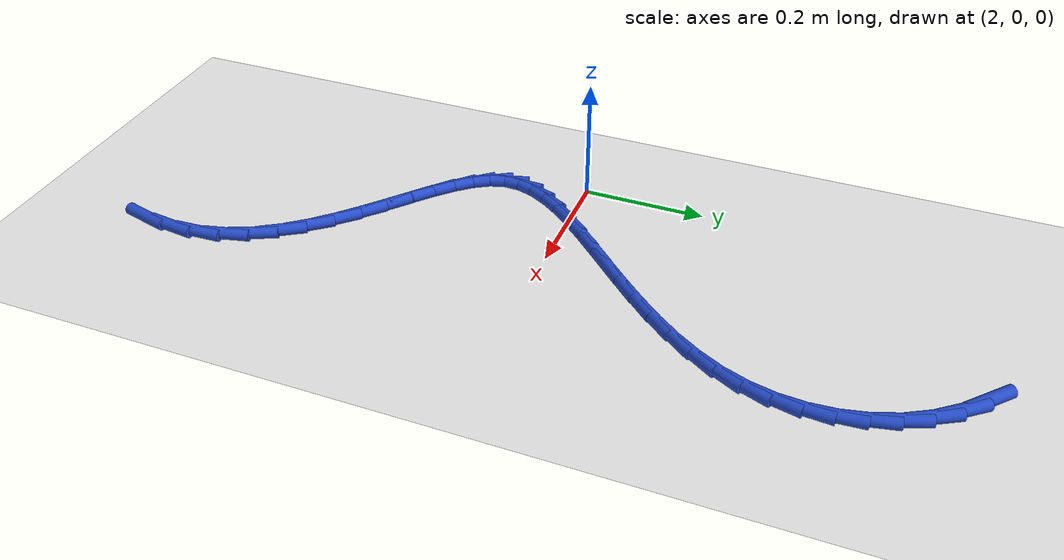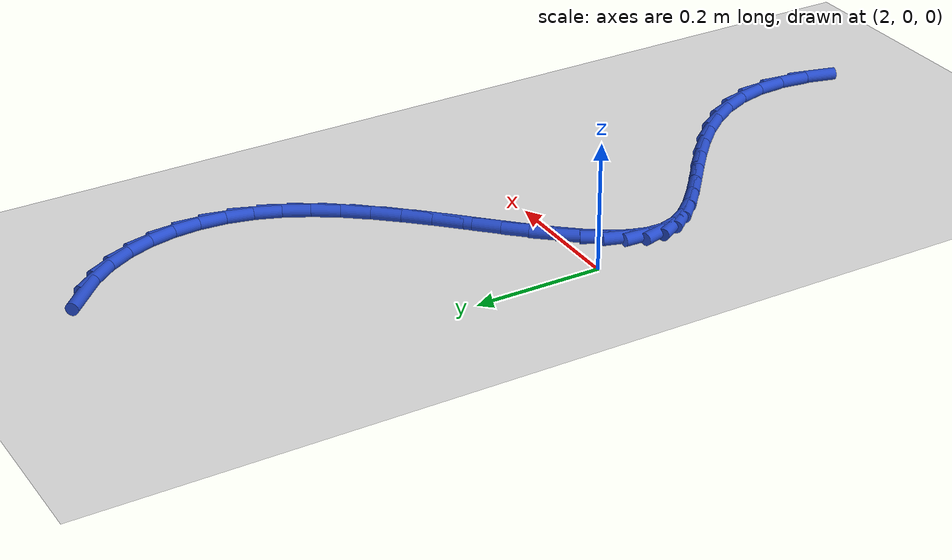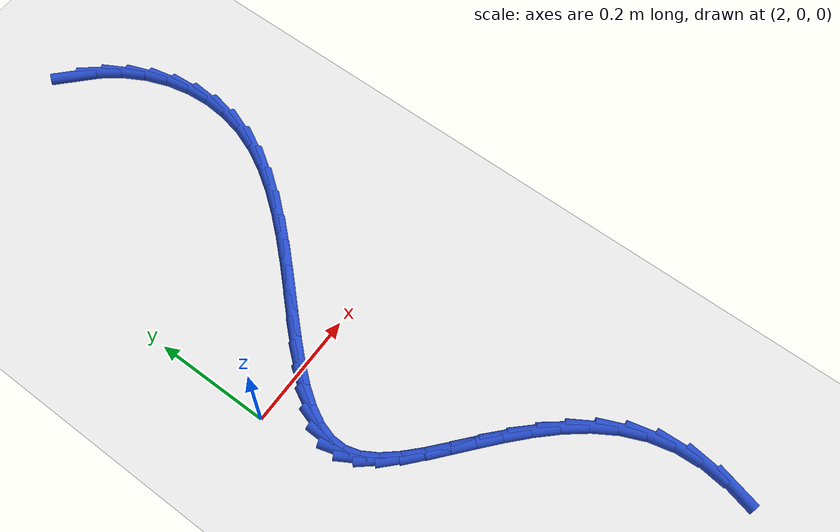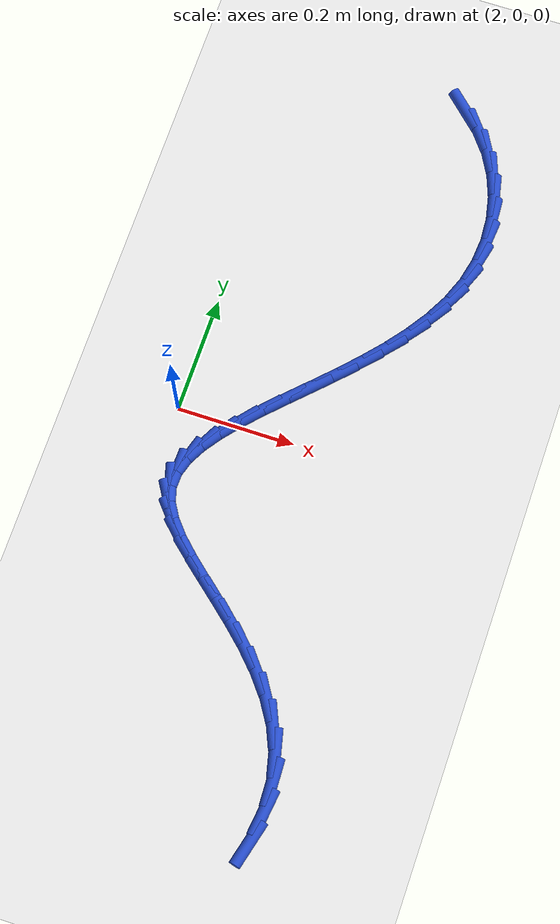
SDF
<sdf version="1.6">
 <world name="default">
  <model name="ground_plane">
   <static>1</static>
   <link name="link">
    <collision name="collision">
     <geometry><plane><normal>0 0 1</normal><size>100 100</size></plane></geometry>
     <surface><friction><ode><mu>100</mu><mu2>50</mu2></ode></friction></surface>
    </collision>
    <visual name="visual">
     <cast_shadows>0</cast_shadows>
     <geometry><plane><normal>0 0 1</normal><size>100 100</size></plane></geometry>
     <material>
      <script><uri>file://media/materials/scripts/gazebo.material</uri><name>Gazebo/WhiteGlow</name></script>
     </material>
    </visual>
   </link>
  </model>
  <model name="line">
   <link name="link_93">
    <pose>2.2870967362323027 0.6661822941839748 0.01 0 1.57 -0.758001790986611</pose>
    <collision name="collision">
     <geometry><cylinder><radius>0.01</radius><length>0.08</length></cylinder></geometry>
    </collision>
    <visual name="visual">
     <material>
      <script><name>Gazebo/Blue</name><uri>file://media/materials/scripts/gazebo.material</uri></script>
     </material>
     <geometry><cylinder><radius>0.01</radius><length>0.08</length></cylinder></geometry>
    </visual>
   </link>
   <link name="link_94">
    <pose>2.3196730505247185 0.6353437517136151 0.01 0 1.57 -0.9112644116837351</pose>
    <collision name="collision">
     <geometry><cylinder><radius>0.01</radius><length>0.08</length></cylinder></geometry>
    </collision>
    <visual name="visual">
     <material>
      <script><name>Gazebo/Blue</name><uri>file://media/materials/scripts/gazebo.material</uri></script>
     </material>
     <geometry><cylinder><radius>0.01</radius><length>0.08</length></cylinder></geometry>
    </visual>
   </link>
   <link name="link_95">
    <pose>2.3463635806340384 0.600920133127875 0.01 0 1.57 -1.0630850598658943</pose>
    <collision name="collision">
     <geometry><cylinder><radius>0.01</radius><length>0.08</length></cylinder></geometry>
    </collision>
    <visual name="visual">
     <material>
      <script><name>Gazebo/Blue</name><uri>file://media/materials/scripts/gazebo.material</uri></script>
     </material>
     <geometry><cylinder><radius>0.01</radius><length>0.08</length></cylinder></geometry>
    </visual>
   </link>
   <link name="link_96">
    <pose>2.367130562901029 0.5635934605785723 0.01 0 1.57 -1.2125737376812222</pose>
    <collision name="collision">
     <geometry><cylinder><radius>0.01</radius><length>0.08</length></cylinder></geometry>
    </collision>
    <visual name="visual">
     <material>
      <script><name>Gazebo/Blue</name><uri>file://media/materials/scripts/gazebo.material</uri></script>
     </material>
     <geometry><cylinder><radius>0.01</radius><length>0.08</length></cylinder></geometry>
    </visual>
   </link>
   <link name="link_97">
    <pose>2.3819362336664516 0.5240457562175261 0.01 0 1.57 -1.3596494786223026</pose>
    <collision name="collision">
     <geometry><cylinder><radius>0.01</radius><length>0.08</length></cylinder></geometry>
    </collision>
    <visual name="visual">
     <material>
      <script><name>Gazebo/Blue</name><uri>file://media/materials/scripts/gazebo.material</uri></script>
     </material>
     <geometry><cylinder><radius>0.01</radius><length>0.08</length></cylinder></geometry>
    </visual>
   </link>
   <link name="link_98">
    <pose>2.3907428292710713 0.4829590421965542 0.01 0 1.57 -1.5048569552525022</pose>
    <collision name="collision">
     <geometry><cylinder><radius>0.01</radius><length>0.08</length></cylinder></geometry>
    </collision>
    <visual name="visual">
     <material>
      <script><name>Gazebo/Blue</name><uri>file://media/materials/scripts/gazebo.material</uri></script>
     </material>
     <geometry><cylinder><radius>0.01</radius><length>0.08</length></cylinder></geometry>
    </visual>
   </link>
   <link name="link_99">
    <pose>2.3935125860556523 0.4410153406674748 0.01 0 1.57 1.492491658375106</pose>
    <collision name="collision">
     <geometry><cylinder><radius>0.01</radius><length>0.08</length></cylinder></geometry>
    </collision>
    <visual name="visual">
     <material>
      <script><name>Gazebo/Blue</name><uri>file://media/materials/scripts/gazebo.material</uri></script>
     </material>
     <geometry><cylinder><radius>0.01</radius><length>0.08</length></cylinder></geometry>
    </visual>
   </link>
   <link name="link_100">
    <pose>2.390207740360957 0.3988966737821071 0.01 0 1.57 1.3482333380971423</pose>
    <collision name="collision">
     <geometry><cylinder><radius>0.01</radius><length>0.08</length></cylinder></geometry>
    </collision>
    <visual name="visual">
     <material>
      <script><name>Gazebo/Blue</name><uri>file://media/materials/scripts/gazebo.material</uri></script>
     </material>
     <geometry><cylinder><radius>0.01</radius><length>0.08</length></cylinder></geometry>
    </visual>
   </link>
   <link name="link_101">
    <pose>2.3807905285277497 0.35728506369226826 0.01 0 1.57 1.2056622199859819</pose>
    <collision name="collision">
     <geometry><cylinder><radius>0.01</radius><length>0.08</length></cylinder></geometry>
    </collision>
    <visual name="visual">
     <material>
      <script><name>Gazebo/Blue</name><uri>file://media/materials/scripts/gazebo.material</uri></script>
     </material>
     <geometry><cylinder><radius>0.01</radius><length>0.08</length></cylinder></geometry>
    </visual>
   </link>
   <link name="link_102">
    <pose>2.3653135409478607 0.31679861542812693 0.01 0 1.57 1.082280414020679</pose>
    <collision name="collision">
     <geometry><cylinder><radius>0.01</radius><length>0.08</length></cylinder></geometry>
    </collision>
    <visual name="visual">
     <material>
      <script><name>Gazebo/Blue</name><uri>file://media/materials/scripts/gazebo.material</uri></script>
     </material>
     <geometry><cylinder><radius>0.01</radius><length>0.08</length></cylinder></geometry>
    </visual>
   </link>
   <link name="link_103">
    <pose>2.3444782296406212 0.2775964245223131 0.01 0 1.57 0.984577662617644</pose>
    <collision name="collision">
     <geometry><cylinder><radius>0.01</radius><length>0.08</length></cylinder></geometry>
    </collision>
    <visual name="visual">
     <material>
      <script><name>Gazebo/Blue</name><uri>file://media/materials/scripts/gazebo.material</uri></script>
     </material>
     <geometry><cylinder><radius>0.01</radius><length>0.08</length></cylinder></geometry>
    </visual>
   </link>
   <link name="link_104">
    <pose>2.3192696296708877 0.23963697777099482 0.01 0 1.57 0.9096635656161746</pose>
    <collision name="collision">
     <geometry><cylinder><radius>0.01</radius><length>0.08</length></cylinder></geometry>
    </collision>
    <visual name="visual">
     <material>
      <script><name>Gazebo/Blue</name><uri>file://media/materials/scripts/gazebo.material</uri></script>
     </material>
     <geometry><cylinder><radius>0.01</radius><length>0.08</length></cylinder></geometry>
    </visual>
   </link>
   <link name="link_105">
    <pose>2.2906739657571644 0.20287792040057567 0.01 0 1.57 0.8544278095283522</pose>
    <collision name="collision">
     <geometry><cylinder><radius>0.01</radius><length>0.08</length></cylinder></geometry>
    </collision>
    <visual name="visual">
     <material>
      <script><name>Gazebo/Blue</name><uri>file://media/materials/scripts/gazebo.material</uri></script>
     </material>
     <geometry><cylinder><radius>0.01</radius><length>0.08</length></cylinder></geometry>
    </visual>
   </link>
   <link name="link_106">
    <pose>2.259677462617961 0.16727689763746123 0.01 0 1.57 0.8163947352083136</pose>
    <collision name="collision">
     <geometry><cylinder><radius>0.01</radius><length>0.08</length></cylinder></geometry>
    </collision>
    <visual name="visual">
     <material>
      <script><name>Gazebo/Blue</name><uri>file://media/materials/scripts/gazebo.material</uri></script>
     </material>
     <geometry><cylinder><radius>0.01</radius><length>0.08</length></cylinder></geometry>
    </visual>
   </link>
   <link name="link_107">
    <pose>2.227266344971783 0.13279155470805545 0.01 0 1.57 0.7940394162882383</pose>
    <collision name="collision">
     <geometry><cylinder><radius>0.01</radius><length>0.08</length></cylinder></geometry>
    </collision>
    <visual name="visual">
     <material>
      <script><name>Gazebo/Blue</name><uri>file://media/materials/scripts/gazebo.material</uri></script>
     </material>
     <geometry><cylinder><radius>0.01</radius><length>0.08</length></cylinder></geometry>
    </visual>
   </link>
   <link name="link_108">
    <pose>2.1944268375371365 0.09937953683876269 0.01 0 1.57 0.7869349839920542</pose>
    <collision name="collision">
     <geometry><cylinder><radius>0.01</radius><length>0.08</length></cylinder></geometry>
    </collision>
    <visual name="visual">
     <material>
      <script><name>Gazebo/Blue</name><uri>file://media/materials/scripts/gazebo.material</uri></script>
     </material>
     <geometry><cylinder><radius>0.01</radius><length>0.08</length></cylinder></geometry>
    </visual>
   </link>
   <link name="link_109">
    <pose>2.162145165032531 0.06699848925598832 0.01 0 1.57 0.7959372668250022</pose>
    <collision name="collision">
     <geometry><cylinder><radius>0.01</radius><length>0.08</length></cylinder></geometry>
    </collision>
    <visual name="visual">
     <material>
      <script><name>Gazebo/Blue</name><uri>file://media/materials/scripts/gazebo.material</uri></script>
     </material>
     <geometry><cylinder><radius>0.01</radius><length>0.08</length></cylinder></geometry>
    </visual>
   </link>
   <link name="link_110">
    <pose>2.1314075521764706 0.035606057186136075 0.01 0 1.57 0.8235503020952906</pose>
    <collision name="collision">
     <geometry><cylinder><radius>0.01</radius><length>0.08</length></cylinder></geometry>
    </collision>
    <visual name="visual">
     <material>
      <script><name>Gazebo/Blue</name><uri>file://media/materials/scripts/gazebo.material</uri></script>
     </material>
     <geometry><cylinder><radius>0.01</radius><length>0.08</length></cylinder></geometry>
    </visual>
   </link>
   <link name="link_111">
    <pose>2.1032002236874656 0.005159885855611394 0.01 0 1.57 0.8746161543255454</pose>
    <collision name="collision">
     <geometry><cylinder><radius>0.01</radius><length>0.08</length></cylinder></geometry>
    </collision>
    <visual name="visual">
     <material>
      <script><name>Gazebo/Blue</name><uri>file://media/materials/scripts/gazebo.material</uri></script>
     </material>
     <geometry><cylinder><radius>0.01</radius><length>0.08</length></cylinder></geometry>
    </visual>
   </link>
   <link name="link_112">
    <pose>2.0785094042840195 -0.024382379509181963 0.01 0 1.57 0.9574639798303602</pose>
    <collision name="collision">
     <geometry><cylinder><radius>0.01</radius><length>0.08</length></cylinder></geometry>
    </collision>
    <visual name="visual">
     <material>
      <script><name>Gazebo/Blue</name><uri>file://media/materials/scripts/gazebo.material</uri></script>
     </material>
     <geometry><cylinder><radius>0.01</radius><length>0.08</length></cylinder></geometry>
    </visual>
   </link>
   <link name="link_113">
    <pose>2.0583213186846416 -0.05306309368183865 0.01 0 1.57 1.0853304082347068</pose>
    <collision name="collision">
     <geometry><cylinder><radius>0.01</radius><length>0.08</length></cylinder></geometry>
    </collision>
    <visual name="visual">
     <material>
      <script><name>Gazebo/Blue</name><uri>file://media/materials/scripts/gazebo.material</uri></script>
     </material>
     <geometry><cylinder><radius>0.01</radius><length>0.08</length></cylinder></geometry>
    </visual>
   </link>
   <link name="link_114">
    <pose>2.0436221916078376 -0.08092461143595481 0.01 0 1.57 1.2760050335674697</pose>
    <collision name="collision">
     <geometry><cylinder><radius>0.01</radius><length>0.08</length></cylinder></geometry>
    </collision>
    <visual name="visual">
     <material>
      <script><name>Gazebo/Blue</name><uri>file://media/materials/scripts/gazebo.material</uri></script>
     </material>
     <geometry><cylinder><radius>0.01</radius><length>0.08</length></cylinder></geometry>
    </visual>
   </link>
   <link name="link_115">
    <pose>2.035398247772115 -0.10800928754512515 0.01 0 1.57 1.5418658657231834</pose>
    <collision name="collision">
     <geometry><cylinder><radius>0.01</radius><length>0.08</length></cylinder></geometry>
    </collision>
    <visual name="visual">
     <material>
      <script><name>Gazebo/Blue</name><uri>file://media/materials/scripts/gazebo.material</uri></script>
     </material>
     <geometry><cylinder><radius>0.01</radius><length>0.08</length></cylinder></geometry>
    </visual>
   </link>
   <link name="link_116">
    <pose>2.0346357118959815 -0.13435947678294544 0.01 0 1.57 -1.2857736126353707</pose>
    <collision name="collision">
     <geometry><cylinder><radius>0.01</radius><length>0.08</length></cylinder></geometry>
    </collision>
    <visual name="visual">
     <material>
      <script><name>Gazebo/Blue</name><uri>file://media/materials/scripts/gazebo.material</uri></script>
     </material>
     <geometry><cylinder><radius>0.01</radius><length>0.08</length></cylinder></geometry>
    </visual>
   </link>
   <link name="link_117">
    <pose>2.042159990104589 -0.16003958379378674 0.01 0 1.57 -1.0289231118922477</pose>
    <collision name="collision">
     <geometry><cylinder><radius>0.01</radius><length>0.08</length></cylinder></geometry>
    </collision>
    <visual name="visual">
     <material>
      <script><name>Gazebo/Blue</name><uri>file://media/materials/scripts/gazebo.material</uri></script>
     </material>
     <geometry><cylinder><radius>0.01</radius><length>0.08</length></cylinder></geometry>
    </visual>
   </link>
   <link name="link_118">
    <pose>2.0573718504917378 -0.1853093456387317 0.01 0 1.57 -0.8635933235837122</pose>
    <collision name="collision">
     <geometry><cylinder><radius>0.01</radius><length>0.08</length></cylinder></geometry>
    </collision>
    <visual name="visual">
     <material>
      <script><name>Gazebo/Blue</name><uri>file://media/materials/scripts/gazebo.material</uri></script>
     </material>
     <geometry><cylinder><radius>0.01</radius><length>0.08</length></cylinder></geometry>
    </visual>
   </link>
   <link name="link_119">
    <pose>2.0789278249141163 -0.21053054176408972 0.01 0 1.57 -0.7659163911526435</pose>
    <collision name="collision">
     <geometry><cylinder><radius>0.01</radius><length>0.08</length></cylinder></geometry>
    </collision>
    <visual name="visual">
     <material>
      <script><name>Gazebo/Blue</name><uri>file://media/materials/scripts/gazebo.material</uri></script>
     </material>
     <geometry><cylinder><radius>0.01</radius><length>0.08</length></cylinder></geometry>
    </visual>
   </link>
   <link name="link_120">
    <pose>2.1054779679591955 -0.23606583971589912 0.01 0 1.57 -0.7149150291843107</pose>
    <collision name="collision">
     <geometry><cylinder><radius>0.01</radius><length>0.08</length></cylinder></geometry>
    </collision>
    <visual name="visual">
     <material>
      <script><name>Gazebo/Blue</name><uri>file://media/materials/scripts/gazebo.material</uri></script>
     </material>
     <geometry><cylinder><radius>0.01</radius><length>0.08</length></cylinder></geometry>
    </visual>
   </link>
   <link name="link_121">
    <pose>2.135672334214443 -0.262277907040198 0.01 0 1.57 -0.6979563790703661</pose>
    <collision name="collision">
     <geometry><cylinder><radius>0.01</radius><length>0.08</length></cylinder></geometry>
    </collision>
    <visual name="visual">
     <material>
      <script><name>Gazebo/Blue</name><uri>file://media/materials/scripts/gazebo.material</uri></script>
     </material>
     <geometry><cylinder><radius>0.01</radius><length>0.08</length></cylinder></geometry>
    </visual>
   </link>
   <link name="link_122">
    <pose>2.1681609782673292 -0.2895294112830256 0.01 0 1.57 -0.7085706063123725</pose>
    <collision name="collision">
     <geometry><cylinder><radius>0.01</radius><length>0.08</length></cylinder></geometry>
    </collision>
    <visual name="visual">
     <material>
      <script><name>Gazebo/Blue</name><uri>file://media/materials/scripts/gazebo.material</uri></script>
     </material>
     <geometry><cylinder><radius>0.01</radius><length>0.08</length></cylinder></geometry>
    </visual>
   </link>
   <link name="link_123">
    <pose>2.2015939547053214 -0.31818301999041865 0.01 0 1.57 -0.7442998416260854</pose>
    <collision name="collision">
     <geometry><cylinder><radius>0.01</radius><length>0.08</length></cylinder></geometry>
    </collision>
    <visual name="visual">
     <material>
      <script><name>Gazebo/Blue</name><uri>file://media/materials/scripts/gazebo.material</uri></script>
     </material>
     <geometry><cylinder><radius>0.01</radius><length>0.08</length></cylinder></geometry>
    </visual>
   </link>
   <link name="link_124">
    <pose>2.2346213181158894 -0.34860140070841616 0.01 0 1.57 -0.805358888862013</pose>
    <collision name="collision">
     <geometry><cylinder><radius>0.01</radius><length>0.08</length></cylinder></geometry>
    </collision>
    <visual name="visual">
     <material>
      <script><name>Gazebo/Blue</name><uri>file://media/materials/scripts/gazebo.material</uri></script>
     </material>
     <geometry><cylinder><radius>0.01</radius><length>0.08</length></cylinder></geometry>
    </visual>
   </link>
   <link name="link_125">
    <pose>2.2658931230865034 -0.3811472209830565 0.01 0 1.57 -0.8936659209662103</pose>
    <collision name="collision">
     <geometry><cylinder><radius>0.01</radius><length>0.08</length></cylinder></geometry>
    </collision>
    <visual name="visual">
     <material>
      <script><name>Gazebo/Blue</name><uri>file://media/materials/scripts/gazebo.material</uri></script>
     </material>
     <geometry><cylinder><radius>0.01</radius><length>0.08</length></cylinder></geometry>
    </visual>
   </link>
   <link name="link_126">
    <pose>2.2940594242046317 -0.4161831483603788 0.01 0 1.57 -1.0116200005148264</pose>
    <collision name="collision">
     <geometry><cylinder><radius>0.01</radius><length>0.08</length></cylinder></geometry>
    </collision>
    <visual name="visual">
     <material>
      <script><name>Gazebo/Blue</name><uri>file://media/materials/scripts/gazebo.material</uri></script>
     </material>
     <geometry><cylinder><radius>0.01</radius><length>0.08</length></cylinder></geometry>
    </visual>
   </link>
   <link name="link_127">
    <pose>2.3177702760577423 -0.4540718503864196 0.01 0 1.57 -1.1599716917712994</pose>
    <collision name="collision">
     <geometry><cylinder><radius>0.01</radius><length>0.08</length></cylinder></geometry>
    </collision>
    <visual name="visual">
     <material>
      <script><name>Gazebo/Blue</name><uri>file://media/materials/scripts/gazebo.material</uri></script>
     </material>
     <geometry><cylinder><radius>0.01</radius><length>0.08</length></cylinder></geometry>
    </visual>
   </link>
   <link name="link_128">
    <pose>2.3356757332333054 -0.49517599460721795 0.01 0 1.57 -1.3346932661250328</pose>
    <collision name="collision">
     <geometry><cylinder><radius>0.01</radius><length>0.08</length></cylinder></geometry>
    </collision>
    <visual name="visual">
     <material>
      <script><name>Gazebo/Blue</name><uri>file://media/materials/scripts/gazebo.material</uri></script>
     </material>
     <geometry><cylinder><radius>0.01</radius><length>0.08</length></cylinder></geometry>
    </visual>
   </link>
   <link name="link_129">
    <pose>2.346425850318789 -0.5398582485688121 0.01 0 1.57 -1.5238017316999133</pose>
    <collision name="collision">
     <geometry><cylinder><radius>0.01</radius><length>0.08</length></cylinder></geometry>
    </collision>
    <visual name="visual">
     <material>
      <script><name>Gazebo/Blue</name><uri>file://media/materials/scripts/gazebo.material</uri></script>
     </material>
     <geometry><cylinder><radius>0.01</radius><length>0.08</length></cylinder></geometry>
    </visual>
   </link>
   <link name="link_130">
    <pose>2.348711236362146 -0.5884532704447302 0.01 0 1.57 1.449703071205957</pose>
    <collision name="collision">
     <geometry><cylinder><radius>0.01</radius><length>0.08</length></cylinder></geometry>
    </collision>
    <visual name="visual">
     <material>
      <script><name>Gazebo/Blue</name><uri>file://media/materials/scripts/gazebo.material</uri></script>
     </material>
     <geometry><cylinder><radius>0.01</radius><length>0.08</length></cylinder></geometry>
    </visual>
   </link>
   <link name="link_131">
    <pose>2.3423780279735875 -0.6404976409207821 0.01 0 1.57 1.3210099383285256</pose>
    <collision name="collision">
     <geometry><cylinder><radius>0.01</radius><length>0.08</length></cylinder></geometry>
    </collision>
    <visual name="visual">
     <material>
      <script><name>Gazebo/Blue</name><uri>file://media/materials/scripts/gazebo.material</uri></script>
     </material>
     <geometry><cylinder><radius>0.01</radius><length>0.08</length></cylinder></geometry>
    </visual>
   </link>
  </model>
 </world>
</sdf>
